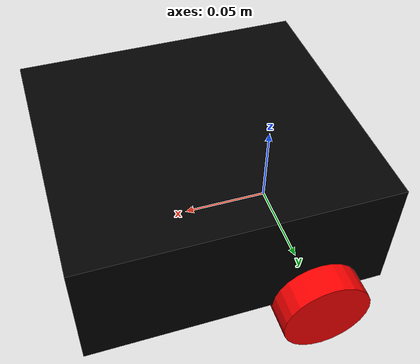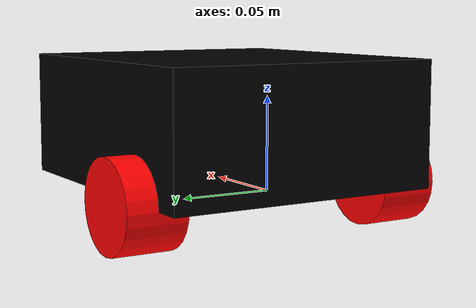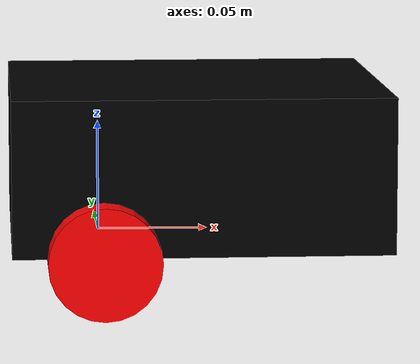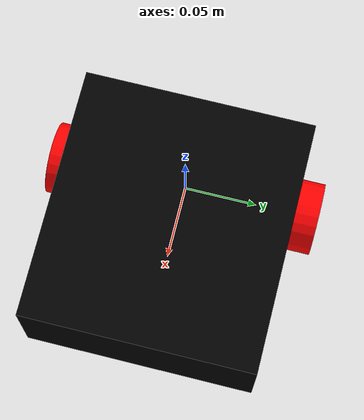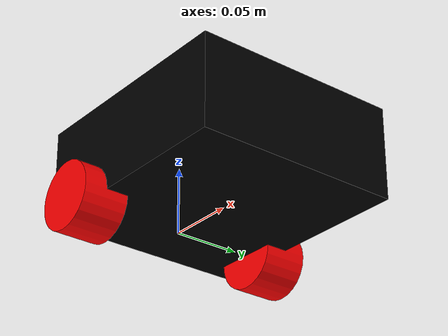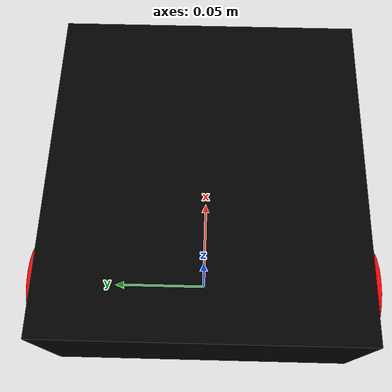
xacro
<?xml version="1.0"?>
<robot xmlns:xacro="http://www.ros.org/wiki/xacro" >

    <!-- Include inertial macros -->
    <xacro:include filename="inertial_macros.xacro"/>

    <xacro:property name="chassis_length" value="0.16782"/>
    <xacro:property name="chassis_width" value="0.154"/>
    <xacro:property name="chassis_height" value="0.0692"/>
    <xacro:property name="chassis_mass" value="1.5"/>
    <xacro:property name="wheel_radius" value="0.0248"/>
    <xacro:property name="wheel_thickness" value="0.03315"/>
    <xacro:property name="wheel_mass"   value="0.090"/>
    <xacro:property name="wheel_offset_x" value="0.04"/>
    <xacro:property name="wheel_offset_y" value="0.077"/>
    <xacro:property name="wheel_offset_z" value="0.0"/>

    <!-- Wheel for support -->
    <xacro:property name="caster_wheel_radius" value="0.04"/>
    <xacro:property name="caster_wheel_mass" value="0.020"/>
    <xacro:property name="caster_wheel_offset_x" value="0.540"/>
    <xacro:property name="caster_wheel_offset_z" value="${wheel_offset_z - wheel_radius + caster_wheel_radius}"/>

    <!-- We set up the colors for the URDF file -->
    <material name="white">
        <color rgba="1 1 1 1" />
    </material>

    <material name="orange">
        <color rgba="1 0.3 0.1 1"/>
    </material>

    <material name="blue">
        <color rgba="0.2 0.2 1 1"/>
    </material>

    <material name="black">
        <color rgba="0 0 0 1"/>
    </material>

    <material name="red">
        <color rgba="1 0 0 1"/>
    </material>

    <material name="purple">
        <color rgba="0.5 0 0.5 1"/>
    </material>

    <!-- BASE LINK -->
    <link name="base_link">

    </link>

    <!-- BASE FOOTPRINT LINK-->
    <joint name="base_footprint_joint" type="fixed">
        <parent link="base_link"/>
        <child link="base_footprint"/>
        <origin xyz="0 0 0" rpy="0 0 0"/>
    </joint>

    <link name="base_footprint">
    </link>

    <!-- CHASSIS LINK -->
    <joint name="chassis_joint" type="fixed">
        <parent link="base_link"/>
        <child link="chassis"/>
        <origin xyz="${-wheel_offset_x} 0 ${-wheel_offset_z}"/>
    </joint>

    <link name="chassis">
        <visual>
            <origin xyz="${chassis_length/2} 0 ${chassis_height/2}"/>
            <geometry>
                <box size="${chassis_length} ${chassis_width} ${chassis_height}"/>
            </geometry>
            <material name="black"/>
        </visual>
        <collision>
            <origin xyz="${chassis_length/2} 0 ${chassis_height/2}"/>
            <geometry>
                <box size="${chassis_length} ${chassis_width} ${chassis_height}"/>
            </geometry>
        </collision>
        <xacro:inertial_box mass="0.5" x="${chassis_length}" y="${chassis_width}" z="${chassis_height}">
            <origin xyz="${chassis_length/2} 0 ${chassis_height/2}" rpy="0 0 0"/>
        </xacro:inertial_box>
    </link>

    <gazebo reference="chassis">
        <material>Gazebo/Black</material>
    </gazebo>

    <!-- LEFT WHEEL LINK -->
    <joint name="left_wheel_joint" type="continuous">
        <parent link="base_link"/>
        <child link="left_wheel"/>
        <origin xyz="0 ${wheel_offset_y} 0" rpy="-${pi/2} 0 0" />
        <axis xyz="0 0 1"/>
    </joint>

    <link name="left_wheel">
        <visual>
            <geometry>
                <cylinder radius="${wheel_radius}" length="${wheel_thickness}"/>
            </geometry>
            <material name="red"/>
        </visual>
        <collision>
            <geometry>
                <sphere radius="${wheel_radius}"/>
            </geometry>
        </collision>
        <xacro:inertial_cylinder mass="${wheel_mass}" length="${wheel_thickness}" radius="${wheel_radius}">
            <origin xyz="0 0 0" rpy="0 0 0"/>
        </xacro:inertial_cylinder>
    </link>

    <gazebo reference="left_wheel">
        <material>Gazebo/Red</material>
    </gazebo>

    <!-- RIGHT WHEEL LINK -->
    <joint name="right_wheel_joint" type="continuous">
        <parent link="base_link"/>
        <child link="right_wheel"/>
        <origin xyz="0 ${-wheel_offset_y} 0" rpy="${pi/2} 0 0" />
        <axis xyz="0 0 -1"/>
    </joint>

    <link name="right_wheel">
        <visual>
            <geometry>
                <cylinder radius="${wheel_radius}" length="${wheel_thickness}"/>
            </geometry>
            <material name="red"/>
        </visual>
        <collision>
            <geometry>
                <sphere radius="${wheel_radius}"/>
            </geometry>
        </collision>
        <xacro:inertial_cylinder mass="${wheel_mass}" length="${wheel_thickness}" radius="${wheel_radius}">
            <origin xyz="0 0 0" rpy="0 0 0"/>
        </xacro:inertial_cylinder>
    </link>

    <gazebo reference="right_wheel">
        <material>Gazebo/Red</material>
    </gazebo>

    <!-- CASTER WHEEL LINK -->
    <joint name="caster_wheel_joint" type="fixed">
        <parent link="chassis"/>
        <child link="caster_wheel"/>
        <origin xyz="${caster_wheel_offset_x} 0 ${caster_wheel_offset_z}"/>
    </joint>

    <link name="caster_wheel">
        <collision>
            <geometry>
                <sphere radius="${caster_wheel_radius}"/>
            </geometry>
        </collision>
        <xacro:inertial_sphere mass="${caster_wheel_mass}" radius="${caster_wheel_radius}">
            <origin xyz="0 0 0" rpy="0 0 0"/>
        </xacro:inertial_sphere>
    </link>

    <gazebo reference="caster_wheel">
        <material>Gazebo/Orange</material>
        <mu1 value="0.001"/>
        <mu2 value="0.001"/>
    </gazebo>

</robot>

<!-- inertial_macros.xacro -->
<robot xmlns:xacro="http://www.ros.org/wiki/xacro" >

    <!-- Inertial Frame of reference for a Sphere -->
    <xacro:macro name="inertial_sphere" params="mass radius *origin">
        <inertial>
            <xacro:insert_block name="origin"/>
            <mass value="${mass}" />
            <inertia ixx="${(2/5) * mass * (radius*radius)}" ixy="0.0" ixz="0.0"
                    iyy="${(2/5) * mass * (radius*radius)}" iyz="0.0"
                    izz="${(2/5) * mass * (radius*radius)}" />
        </inertial>
    </xacro:macro>

    <!-- Inertial Frame of reference for a Box -->
    <xacro:macro name="inertial_box" params="mass x y z *origin">
        <inertial>
            <xacro:insert_block name="origin"/>
            <mass value="${mass}" />
            <inertia ixx="${(1/12) * mass * (y*y+z*z)}" ixy="0.0" ixz="0.0"
                    iyy="${(1/12) * mass * (x*x+z*z)}" iyz="0.0"
                    izz="${(1/12) * mass * (x*x+y*y)}" />
        </inertial>
    </xacro:macro>

    <!-- Inertial Frame of reference for a Cylinder -->
    <xacro:macro name="inertial_cylinder" params="mass length radius *origin">
        <inertial>
            <xacro:insert_block name="origin"/>
            <mass value="${mass}" />
            <inertia ixx="${(1/12) * mass * (3*radius*radius + length*length)}" ixy="0.0" ixz="0.0"
                    iyy="${(1/12) * mass * (3*radius*radius + length*length)}" iyz="0.0"
                    izz="${(1/2) * mass * (radius*radius)}" />
        </inertial>
    </xacro:macro>

</robot>
